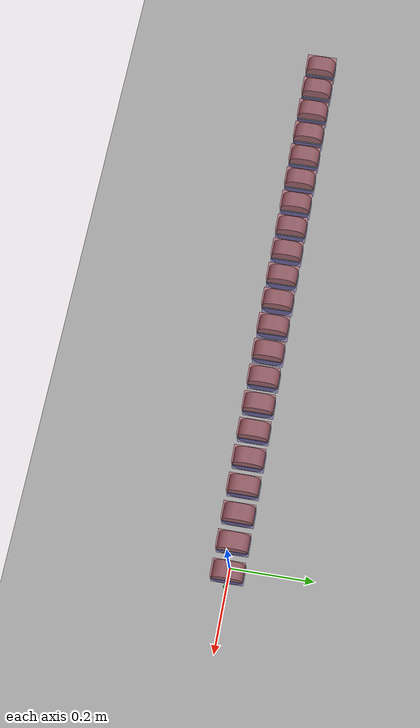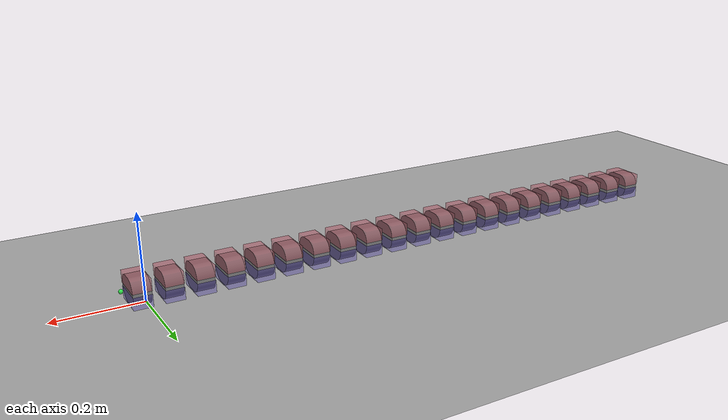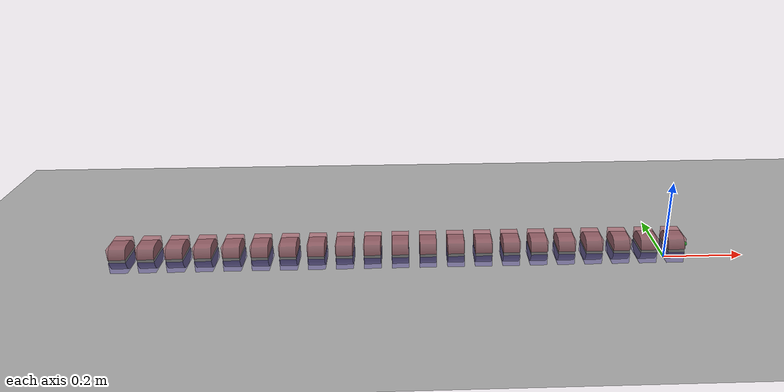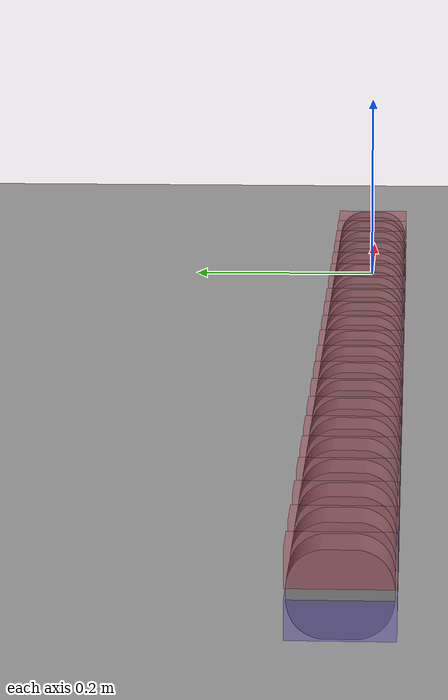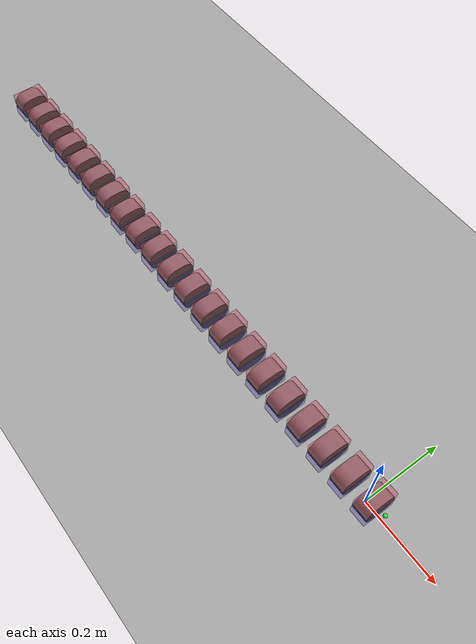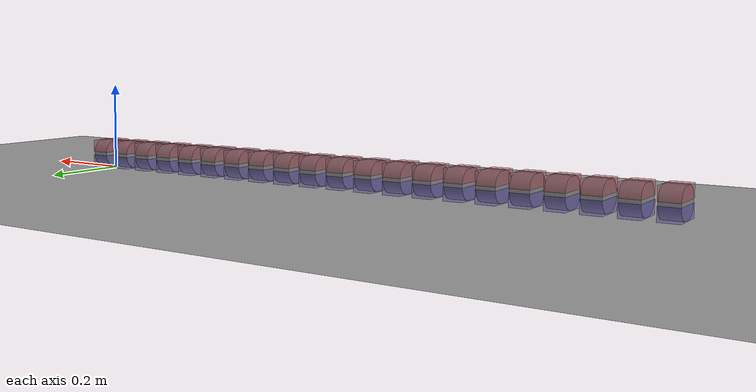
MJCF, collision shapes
<mujoco model="Horcrux v2 n20 with flat plane">
    <include file="horcrux_n20.xml"/>
    <option timestep="0.005"/>

    <asset>
        <texture type="skybox" builtin="gradient" width="512" height="512" rgb1=".4 .6 .8" rgb2="0 0 0"/>
        <texture name="texgeom" type="cube" builtin="flat" mark="cross" width="128" height="128"
                 rgb1="0.6 0.6 0.6" rgb2="0.6 0.6 0.6" markrgb="1 1 1"/>
        <texture name="texplane" type="2d" builtin="checker" rgb1=".55 .55 .55" rgb2=".75 .75 .75"
                 width="512" height="512"/>
        <material name="MatPlane" reflectance="0.0" texture="texplane" texrepeat="1 1" texuniform="true"
                  rgba="1 1 1 1"/>
        <material name="capsule" texture="texgeom" texuniform="true" rgba=".4 .9 .6 1" />
        <material name="ellipsoid" texture="texgeom" texuniform="true" rgba=".4 .6 .9 1" />
        <material name="box" texture="texgeom" texuniform="true" rgba=".4 .9 .9 1" />
        <material name="cylinder" texture="texgeom" texuniform="true" rgba=".8 .6 .8 1" />
        <material name="sphere" texture="texgeom" texuniform="true" rgba=".9 .1 .1 1" />
    </asset>

<worldbody>
    <geom name="floor" type="plane" size="30 30 .5" priority="2" friction="0.65 0.015 0.01" material="MatPlane"/>
</worldbody>

</mujoco>
